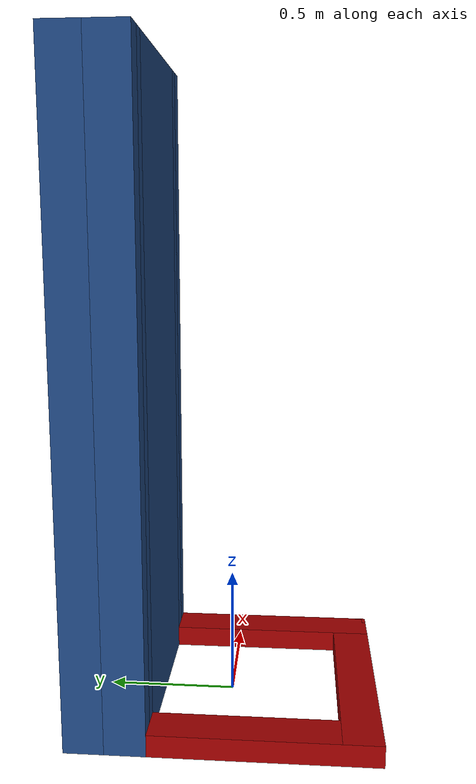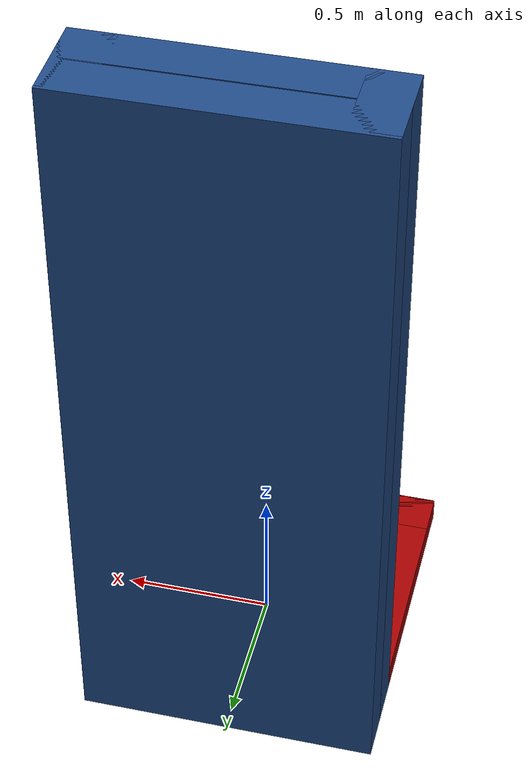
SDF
<?xml version='1.0'?>
<sdf version='1.6'>
  <model name='fanAndHeliport'>
    <pose frame=''>0 0 0 0 -0 0</pose>
    <link name='Wall_12'>
      <collision name='Wall_12_Collision'>
        <geometry>
          <box>
            <size>1 0.15 0.085</size>
          </box>
        </geometry>
        <pose frame=''>0 0 0.0425 0 -0 0</pose>
      </collision>
      <visual name='Wall_12_Visual'>
        <pose frame=''>0 0 0.0425 0 -0 0</pose>
        <geometry>
          <box>
            <size>1 0.15 0.085</size>
          </box>
        </geometry>
        <material>
          <script>
            <uri>file://media/materials/scripts/gazebo.material</uri>
            <name>Gazebo/Grey</name>
          </script>
          <ambient>0.643137 0 0 1</ambient>
        </material>
        <meta>
          <layer>0</layer>
        </meta>
      </visual>
      <pose frame=''>-0.425 -0.07725 0 0 -0 -1.5708</pose>
    </link>
    <link name='Wall_13'>
      <collision name='Wall_13_Collision'>
        <geometry>
          <box>
            <size>1 0.15 0.085</size>
          </box>
        </geometry>
        <pose frame=''>0 0 0.0425 0 -0 0</pose>
      </collision>
      <visual name='Wall_13_Visual'>
        <pose frame=''>0 0 0.0425 0 -0 0</pose>
        <geometry>
          <box>
            <size>1 0.15 0.085</size>
          </box>
        </geometry>
        <material>
          <script>
            <uri>file://media/materials/scripts/gazebo.material</uri>
            <name>Gazebo/Grey</name>
          </script>
          <ambient>0.643137 0 0 1</ambient>
        </material>
        <meta>
          <layer>0</layer>
        </meta>
      </visual>
      <pose frame=''>-0 -0.50225 0 0 -0 0</pose>
    </link>
    <link name='Wall_14'>
      <collision name='Wall_14_Collision'>
        <geometry>
          <box>
            <size>1 0.15 0.085</size>
          </box>
        </geometry>
        <pose frame=''>0 0 0.0425 0 -0 0</pose>
      </collision>
      <visual name='Wall_14_Visual'>
        <pose frame=''>0 0 0.0425 0 -0 0</pose>
        <geometry>
          <box>
            <size>1 0.15 0.085</size>
          </box>
        </geometry>
        <material>
          <script>
            <uri>file://media/materials/scripts/gazebo.material</uri>
            <name>Gazebo/Grey</name>
          </script>
          <ambient>0.643137 0 0 1</ambient>
        </material>
        <meta>
          <layer>0</layer>
        </meta>
      </visual>
      <pose frame=''>0.425 -0.07725 0 0 -0 1.5708</pose>
    </link>
    <link name='Wall_2'>
      <collision name='Wall_2_Collision'>
        <geometry>
          <box>
            <size>1 0.15 2.5</size>
          </box>
        </geometry>
        <pose frame=''>0 0 1.25 0 -0 0</pose>
      </collision>
      <visual name='Wall_2_Visual'>
        <pose frame=''>0 0 1.25 0 -0 0</pose>
        <geometry>
          <box>
            <size>1 0.15 2.5</size>
          </box>
        </geometry>
        <material>
          <script>
            <uri>file://media/materials/scripts/gazebo.material</uri>
            <name>Gazebo/Grey</name>
          </script>
          <ambient>0.12549 0.290196 0.529412 1</ambient>
        </material>
        <meta>
          <layer>0</layer>
        </meta>
      </visual>
      <pose frame=''>-0 0.50225 0 0 -0 3.14159</pose>
    </link>
    <link name='Wall_3'>
      <collision name='Wall_3_Collision'>
        <geometry>
          <box>
            <size>0.293 0.15 2.5</size>
          </box>
        </geometry>
        <pose frame=''>0 0 1.25 0 -0 0</pose>
      </collision>
      <visual name='Wall_3_Visual'>
        <pose frame=''>0 0 1.25 0 -0 0</pose>
        <geometry>
          <box>
            <size>0.293 0.15 2.5</size>
          </box>
        </geometry>
        <material>
          <script>
            <uri>file://media/materials/scripts/gazebo.material</uri>
            <name>Gazebo/Grey</name>
          </script>
          <ambient>0.12549 0.290196 0.529412 1</ambient>
        </material>
        <meta>
          <layer>0</layer>
        </meta>
      </visual>
      <pose frame=''>-0.425 0.41925 0 0 -0 -1.5708</pose>
    </link>
    <link name='Wall_4'>
      <collision name='Wall_4_Collision'>
        <geometry>
          <box>
            <size>1 0.15 2.5</size>
          </box>
        </geometry>
        <pose frame=''>0 0 1.25 0 -0 0</pose>
      </collision>
      <visual name='Wall_4_Visual'>
        <pose frame=''>0 0 1.25 0 -0 0</pose>
        <geometry>
          <box>
            <size>1 0.15 2.5</size>
          </box>
        </geometry>
        <material>
          <script>
            <uri>file://media/materials/scripts/gazebo.material</uri>
            <name>Gazebo/Grey</name>
          </script>
          <ambient>0.12549 0.290196 0.529412 1</ambient>
        </material>
        <meta>
          <layer>0</layer>
        </meta>
      </visual>
      <pose frame=''>-0 0.34775 0 0 -0 0</pose>
    </link>
    <link name='Wall_5'>
      <collision name='Wall_5_Collision'>
        <geometry>
          <box>
            <size>0.293 0.15 2.5</size>
          </box>
        </geometry>
        <pose frame=''>0 0 1.25 0 -0 0</pose>
      </collision>
      <visual name='Wall_5_Visual'>
        <pose frame=''>0 0 1.25 0 -0 0</pose>
        <geometry>
          <box>
            <size>0.293 0.15 2.5</size>
          </box>
        </geometry>
        <material>
          <script>
            <uri>file://media/materials/scripts/gazebo.material</uri>
            <name>Gazebo/Grey</name>
          </script>
          <ambient>0.12549 0.290196 0.529412 1</ambient>
        </material>
        <meta>
          <layer>0</layer>
        </meta>
      </visual>
      <pose frame=''>0.425 0.41925 0 0 -0 1.5708</pose>
    </link>
    <static>1</static>
  </model>
</sdf>
